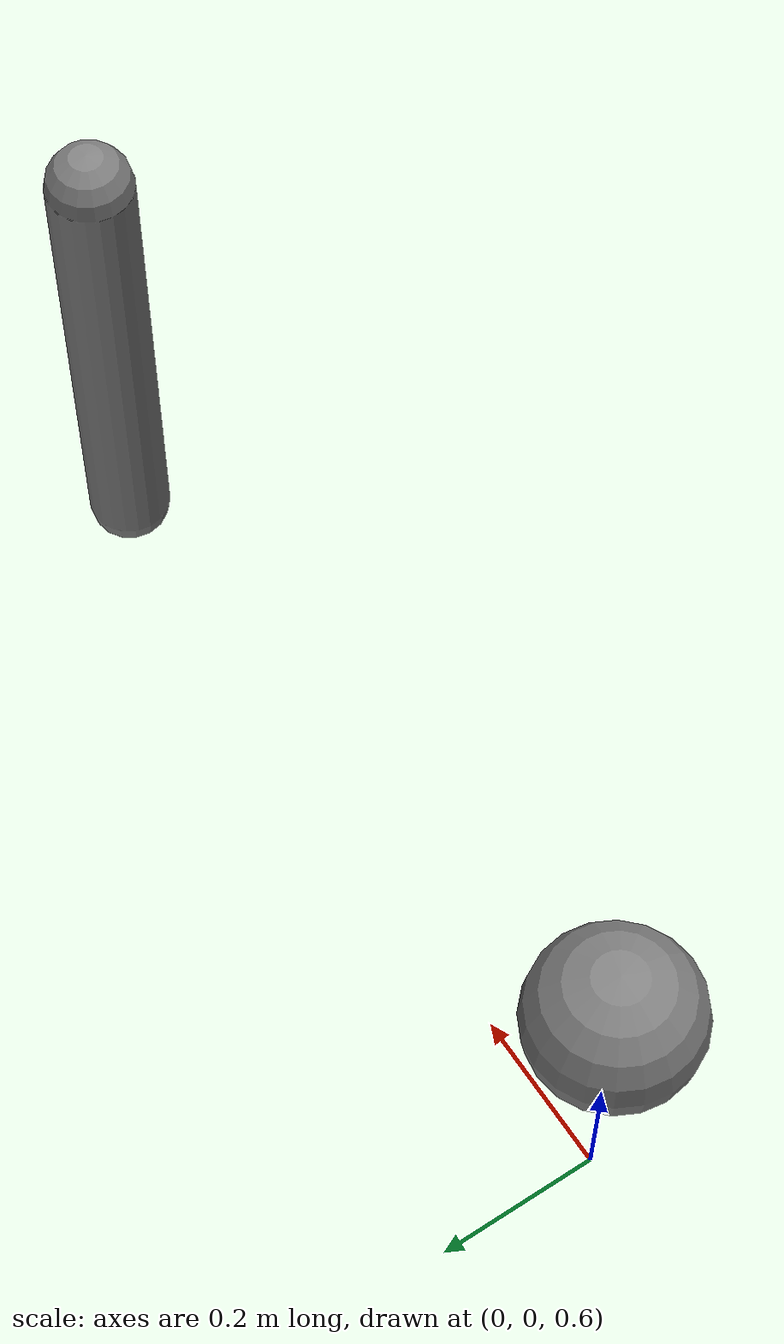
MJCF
<mujoco model="dt28_divergence">
        <option gravity="0 0 0" timestep="0.001"/>
        <worldbody>
            <body name="b1" pos="0 0 1">
                <joint name="J_ball" type="ball"/>
                <geom type="sphere" size="0.1" mass="1.0"/>
            </body>
            <body name="b2" pos="1 0 1">
                <joint name="J_hinge" type="hinge" axis="0 1 0"/>
                <geom type="capsule" size="0.05 0.3" mass="1.0"/>
            </body>
        </worldbody>
        <tendon>
            <fixed name="T1">
                <joint joint="J_ball" coef="2.0"/>
                <joint joint="J_hinge" coef="3.0"/>
            </fixed>
        </tendon>
    </mujoco>
